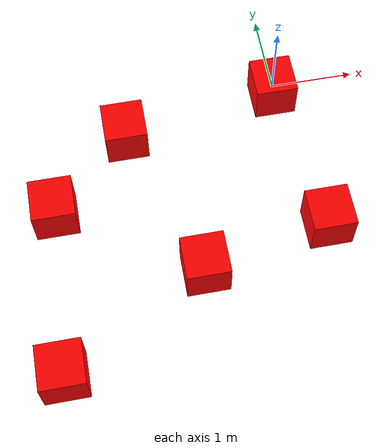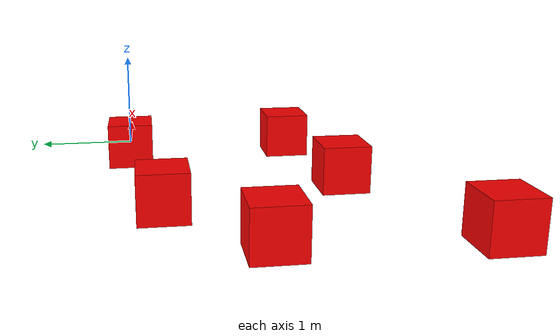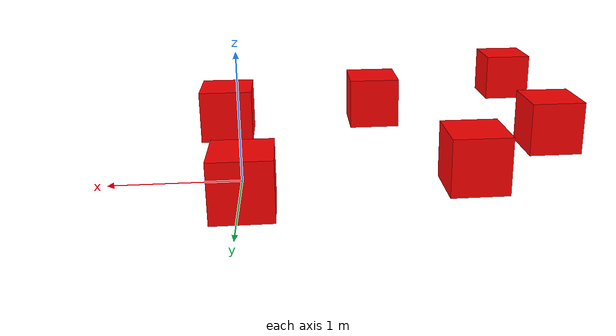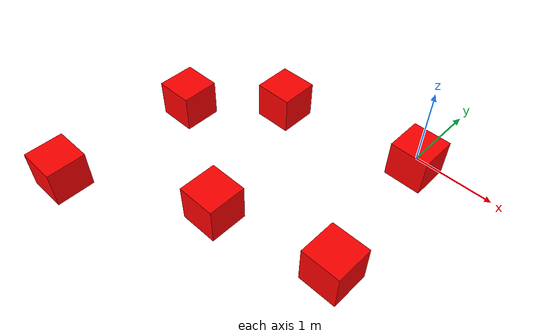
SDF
<?xml version='1.0'?>
<sdf version='1.7'>
  <model name='unit_box'>
    <link name='link'>
      <inertial>
        <mass>1</mass>
        <inertia>
          <ixx>0.166667</ixx>
          <ixy>0</ixy>
          <ixz>0</ixz>
          <iyy>0.166667</iyy>
          <iyz>0</iyz>
          <izz>0.166667</izz>
        </inertia>
        <pose>0 0 0 0 -0 0</pose>
      </inertial>
      <self_collide>0</self_collide>
      <enable_wind>0</enable_wind>
      <kinematic>0</kinematic>
      <pose>0 0 0 0 -0 0</pose>
      <gravity>1</gravity>
      <visual name='visual'>
        <geometry>
          <box>
            <size>0.5 0.5 0.5</size>
          </box>
        </geometry>
        <material>
          <script>
            <name>Gazebo/Grey</name>
            <uri>file://media/materials/scripts/gazebo.material</uri>
          </script>
          <shader type='pixel'>
            <normal_map>__default__</normal_map>
          </shader>
          <ambient>1 0 0 1</ambient>
          <diffuse>0.7 0.7 0.7 1</diffuse>
          <specular>0.01 0.01 0.01 1</specular>
          <emissive>0 0 0 1</emissive>
        </material>
        <pose>0 0 0 0 -0 0</pose>
        <transparency>0</transparency>
        <cast_shadows>1</cast_shadows>
      </visual>
      <collision name='collision'>
        <laser_retro>0</laser_retro>
        <max_contacts>10</max_contacts>
        <pose>0 0 0 0 -0 0</pose>
        <geometry>
          <box>
            <size>0.5 0.5 0.5</size>
          </box>
        </geometry>
        <surface>
          <friction>
            <ode>
              <mu>1</mu>
              <mu2>1</mu2>
              <fdir1>0 0 0</fdir1>
              <slip1>0</slip1>
              <slip2>0</slip2>
            </ode>
            <torsional>
              <coefficient>1</coefficient>
              <patch_radius>0</patch_radius>
              <surface_radius>0</surface_radius>
              <use_patch_radius>1</use_patch_radius>
              <ode>
                <slip>0</slip>
              </ode>
            </torsional>
          </friction>
          <bounce>
            <restitution_coefficient>0</restitution_coefficient>
            <threshold>1e+06</threshold>
          </bounce>
          <contact>
            <collide_without_contact>0</collide_without_contact>
            <collide_without_contact_bitmask>1</collide_without_contact_bitmask>
            <collide_bitmask>1</collide_bitmask>
            <ode>
              <soft_cfm>0</soft_cfm>
              <soft_erp>0.2</soft_erp>
              <kp>1e+13</kp>
              <kd>1</kd>
              <max_vel>0.01</max_vel>
              <min_depth>0</min_depth>
            </ode>
            <bullet>
              <split_impulse>1</split_impulse>
              <split_impulse_penetration_threshold>-0.01</split_impulse_penetration_threshold>
              <soft_cfm>0</soft_cfm>
              <soft_erp>0.2</soft_erp>
              <kp>1e+13</kp>
              <kd>1</kd>
            </bullet>
          </contact>
        </surface>
      </collision>
    </link>
    <link name='link_clone'>
      <inertial>
        <mass>1</mass>
        <inertia>
          <ixx>0.166667</ixx>
          <ixy>0</ixy>
          <ixz>0</ixz>
          <iyy>0.166667</iyy>
          <iyz>0</iyz>
          <izz>0.166667</izz>
        </inertia>
        <pose>0 0 0 0 -0 0</pose>
      </inertial>
      <self_collide>0</self_collide>
      <enable_wind>0</enable_wind>
      <kinematic>0</kinematic>
      <pose>0.24386 -1.88922 0 -0 -0 -0</pose>
      <gravity>1</gravity>
      <visual name='visual'>
        <geometry>
          <box>
            <size>0.5 0.5 0.5</size>
          </box>
        </geometry>
        <material>
          <script>
            <name>Gazebo/Grey</name>
            <uri>file://media/materials/scripts/gazebo.material</uri>
          </script>
          <shader type='pixel'>
            <normal_map>__default__</normal_map>
          </shader>
          <ambient>1 0 0 1</ambient>
          <diffuse>0.7 0.7 0.7 1</diffuse>
          <specular>0.01 0.01 0.01 1</specular>
          <emissive>0 0 0 1</emissive>
        </material>
        <pose>0 0 0 0 -0 0</pose>
        <transparency>0</transparency>
        <cast_shadows>1</cast_shadows>
      </visual>
      <collision name='collision'>
        <laser_retro>0</laser_retro>
        <max_contacts>10</max_contacts>
        <pose>0 0 0 0 -0 0</pose>
        <geometry>
          <box>
            <size>0.5 0.5 0.5</size>
          </box>
        </geometry>
        <surface>
          <friction>
            <ode>
              <mu>1</mu>
              <mu2>1</mu2>
              <fdir1>0 0 0</fdir1>
              <slip1>0</slip1>
              <slip2>0</slip2>
            </ode>
            <torsional>
              <coefficient>1</coefficient>
              <patch_radius>0</patch_radius>
              <surface_radius>0</surface_radius>
              <use_patch_radius>1</use_patch_radius>
              <ode>
                <slip>0</slip>
              </ode>
            </torsional>
          </friction>
          <bounce>
            <restitution_coefficient>0</restitution_coefficient>
            <threshold>1e+06</threshold>
          </bounce>
          <contact>
            <collide_without_contact>0</collide_without_contact>
            <collide_without_contact_bitmask>1</collide_without_contact_bitmask>
            <collide_bitmask>1</collide_bitmask>
            <ode>
              <soft_cfm>0</soft_cfm>
              <soft_erp>0.2</soft_erp>
              <kp>1e+13</kp>
              <kd>1</kd>
              <max_vel>0.01</max_vel>
              <min_depth>0</min_depth>
            </ode>
            <bullet>
              <split_impulse>1</split_impulse>
              <split_impulse_penetration_threshold>-0.01</split_impulse_penetration_threshold>
              <soft_cfm>0</soft_cfm>
              <soft_erp>0.2</soft_erp>
              <kp>1e+13</kp>
              <kd>1</kd>
            </bullet>
          </contact>
        </surface>
      </collision>
    </link>
    <link name='link_clone_0'>
      <inertial>
        <mass>1</mass>
        <inertia>
          <ixx>0.166667</ixx>
          <ixy>0</ixy>
          <ixz>0</ixz>
          <iyy>0.166667</iyy>
          <iyz>0</iyz>
          <izz>0.166667</izz>
        </inertia>
        <pose>0 0 0 0 -0 0</pose>
      </inertial>
      <self_collide>0</self_collide>
      <enable_wind>0</enable_wind>
      <kinematic>0</kinematic>
      <pose>-1.25347 -2.21177 0 -0 -0 -0</pose>
      <gravity>1</gravity>
      <visual name='visual'>
        <geometry>
          <box>
            <size>0.5 0.5 0.5</size>
          </box>
        </geometry>
        <material>
          <script>
            <name>Gazebo/Grey</name>
            <uri>file://media/materials/scripts/gazebo.material</uri>
          </script>
          <shader type='pixel'>
            <normal_map>__default__</normal_map>
          </shader>
          <ambient>1 0 0 1</ambient>
          <diffuse>0.7 0.7 0.7 1</diffuse>
          <specular>0.01 0.01 0.01 1</specular>
          <emissive>0 0 0 1</emissive>
        </material>
        <pose>0 0 0 0 -0 0</pose>
        <transparency>0</transparency>
        <cast_shadows>1</cast_shadows>
      </visual>
      <collision name='collision'>
        <laser_retro>0</laser_retro>
        <max_contacts>10</max_contacts>
        <pose>0 0 0 0 -0 0</pose>
        <geometry>
          <box>
            <size>0.5 0.5 0.5</size>
          </box>
        </geometry>
        <surface>
          <friction>
            <ode>
              <mu>1</mu>
              <mu2>1</mu2>
              <fdir1>0 0 0</fdir1>
              <slip1>0</slip1>
              <slip2>0</slip2>
            </ode>
            <torsional>
              <coefficient>1</coefficient>
              <patch_radius>0</patch_radius>
              <surface_radius>0</surface_radius>
              <use_patch_radius>1</use_patch_radius>
              <ode>
                <slip>0</slip>
              </ode>
            </torsional>
          </friction>
          <bounce>
            <restitution_coefficient>0</restitution_coefficient>
            <threshold>1e+06</threshold>
          </bounce>
          <contact>
            <collide_without_contact>0</collide_without_contact>
            <collide_without_contact_bitmask>1</collide_without_contact_bitmask>
            <collide_bitmask>1</collide_bitmask>
            <ode>
              <soft_cfm>0</soft_cfm>
              <soft_erp>0.2</soft_erp>
              <kp>1e+13</kp>
              <kd>1</kd>
              <max_vel>0.01</max_vel>
              <min_depth>0</min_depth>
            </ode>
            <bullet>
              <split_impulse>1</split_impulse>
              <split_impulse_penetration_threshold>-0.01</split_impulse_penetration_threshold>
              <soft_cfm>0</soft_cfm>
              <soft_erp>0.2</soft_erp>
              <kp>1e+13</kp>
              <kd>1</kd>
            </bullet>
          </contact>
        </surface>
      </collision>
    </link>
    <link name='link_clone_1'>
      <inertial>
        <mass>1</mass>
        <inertia>
          <ixx>0.166667</ixx>
          <ixy>0</ixy>
          <ixz>0</ixz>
          <iyy>0.166667</iyy>
          <iyz>0</iyz>
          <izz>0.166667</izz>
        </inertia>
        <pose>0 0 0 0 -0 0</pose>
      </inertial>
      <self_collide>0</self_collide>
      <enable_wind>0</enable_wind>
      <kinematic>0</kinematic>
      <pose>-2.84193 -1.20206 0 -0 -0 -0</pose>
      <gravity>1</gravity>
      <visual name='visual'>
        <geometry>
          <box>
            <size>0.5 0.5 0.5</size>
          </box>
        </geometry>
        <material>
          <script>
            <name>Gazebo/Grey</name>
            <uri>file://media/materials/scripts/gazebo.material</uri>
          </script>
          <shader type='pixel'>
            <normal_map>__default__</normal_map>
          </shader>
          <ambient>1 0 0 1</ambient>
          <diffuse>0.7 0.7 0.7 1</diffuse>
          <specular>0.01 0.01 0.01 1</specular>
          <emissive>0 0 0 1</emissive>
        </material>
        <pose>0 0 0 0 -0 0</pose>
        <transparency>0</transparency>
        <cast_shadows>1</cast_shadows>
      </visual>
      <collision name='collision'>
        <laser_retro>0</laser_retro>
        <max_contacts>10</max_contacts>
        <pose>0 0 0 0 -0 0</pose>
        <geometry>
          <box>
            <size>0.5 0.5 0.5</size>
          </box>
        </geometry>
        <surface>
          <friction>
            <ode>
              <mu>1</mu>
              <mu2>1</mu2>
              <fdir1>0 0 0</fdir1>
              <slip1>0</slip1>
              <slip2>0</slip2>
            </ode>
            <torsional>
              <coefficient>1</coefficient>
              <patch_radius>0</patch_radius>
              <surface_radius>0</surface_radius>
              <use_patch_radius>1</use_patch_radius>
              <ode>
                <slip>0</slip>
              </ode>
            </torsional>
          </friction>
          <bounce>
            <restitution_coefficient>0</restitution_coefficient>
            <threshold>1e+06</threshold>
          </bounce>
          <contact>
            <collide_without_contact>0</collide_without_contact>
            <collide_without_contact_bitmask>1</collide_without_contact_bitmask>
            <collide_bitmask>1</collide_bitmask>
            <ode>
              <soft_cfm>0</soft_cfm>
              <soft_erp>0.2</soft_erp>
              <kp>1e+13</kp>
              <kd>1</kd>
              <max_vel>0.01</max_vel>
              <min_depth>0</min_depth>
            </ode>
            <bullet>
              <split_impulse>1</split_impulse>
              <split_impulse_penetration_threshold>-0.01</split_impulse_penetration_threshold>
              <soft_cfm>0</soft_cfm>
              <soft_erp>0.2</soft_erp>
              <kp>1e+13</kp>
              <kd>1</kd>
            </bullet>
          </contact>
        </surface>
      </collision>
    </link>
    <link name='link_clone_2'>
      <inertial>
        <mass>1</mass>
        <inertia>
          <ixx>0.166667</ixx>
          <ixy>0</ixy>
          <ixz>0</ixz>
          <iyy>0.166667</iyy>
          <iyz>0</iyz>
          <izz>0.166667</izz>
        </inertia>
        <pose>0 0 0 0 -0 0</pose>
      </inertial>
      <self_collide>0</self_collide>
      <enable_wind>0</enable_wind>
      <kinematic>0</kinematic>
      <pose>-1.89069 -0.317917 -0 -0 -0 -0</pose>
      <gravity>1</gravity>
      <visual name='visual'>
        <geometry>
          <box>
            <size>0.5 0.5 0.5</size>
          </box>
        </geometry>
        <material>
          <script>
            <name>Gazebo/Grey</name>
            <uri>file://media/materials/scripts/gazebo.material</uri>
          </script>
          <shader type='pixel'>
            <normal_map>__default__</normal_map>
          </shader>
          <ambient>1 0 0 1</ambient>
          <diffuse>0.7 0.7 0.7 1</diffuse>
          <specular>0.01 0.01 0.01 1</specular>
          <emissive>0 0 0 1</emissive>
        </material>
        <pose>0 0 0 0 -0 0</pose>
        <transparency>0</transparency>
        <cast_shadows>1</cast_shadows>
      </visual>
      <collision name='collision'>
        <laser_retro>0</laser_retro>
        <max_contacts>10</max_contacts>
        <pose>0 0 0 0 -0 0</pose>
        <geometry>
          <box>
            <size>0.5 0.5 0.5</size>
          </box>
        </geometry>
        <surface>
          <friction>
            <ode>
              <mu>1</mu>
              <mu2>1</mu2>
              <fdir1>0 0 0</fdir1>
              <slip1>0</slip1>
              <slip2>0</slip2>
            </ode>
            <torsional>
              <coefficient>1</coefficient>
              <patch_radius>0</patch_radius>
              <surface_radius>0</surface_radius>
              <use_patch_radius>1</use_patch_radius>
              <ode>
                <slip>0</slip>
              </ode>
            </torsional>
          </friction>
          <bounce>
            <restitution_coefficient>0</restitution_coefficient>
            <threshold>1e+06</threshold>
          </bounce>
          <contact>
            <collide_without_contact>0</collide_without_contact>
            <collide_without_contact_bitmask>1</collide_without_contact_bitmask>
            <collide_bitmask>1</collide_bitmask>
            <ode>
              <soft_cfm>0</soft_cfm>
              <soft_erp>0.2</soft_erp>
              <kp>1e+13</kp>
              <kd>1</kd>
              <max_vel>0.01</max_vel>
              <min_depth>0</min_depth>
            </ode>
            <bullet>
              <split_impulse>1</split_impulse>
              <split_impulse_penetration_threshold>-0.01</split_impulse_penetration_threshold>
              <soft_cfm>0</soft_cfm>
              <soft_erp>0.2</soft_erp>
              <kp>1e+13</kp>
              <kd>1</kd>
            </bullet>
          </contact>
        </surface>
      </collision>
    </link>
    <link name='link_clone_3'>
      <inertial>
        <mass>1</mass>
        <inertia>
          <ixx>0.166667</ixx>
          <ixy>0</ixy>
          <ixz>0</ixz>
          <iyy>0.166667</iyy>
          <iyz>0</iyz>
          <izz>0.166667</izz>
        </inertia>
        <pose>0 0 0 0 -0 0</pose>
      </inertial>
      <self_collide>0</self_collide>
      <enable_wind>0</enable_wind>
      <kinematic>0</kinematic>
      <pose>-2.95242 -3.1502 0 -0 -0 -0</pose>
      <gravity>1</gravity>
      <visual name='visual'>
        <geometry>
          <box>
            <size>0.5 0.5 0.5</size>
          </box>
        </geometry>
        <material>
          <script>
            <name>Gazebo/Grey</name>
            <uri>file://media/materials/scripts/gazebo.material</uri>
          </script>
          <shader type='pixel'>
            <normal_map>__default__</normal_map>
          </shader>
          <ambient>1 0 0 1</ambient>
          <diffuse>0.7 0.7 0.7 1</diffuse>
          <specular>0.01 0.01 0.01 1</specular>
          <emissive>0 0 0 1</emissive>
        </material>
        <pose>0 0 0 0 -0 0</pose>
        <transparency>0</transparency>
        <cast_shadows>1</cast_shadows>
      </visual>
      <collision name='collision'>
        <laser_retro>0</laser_retro>
        <max_contacts>10</max_contacts>
        <pose>0 0 0 0 -0 0</pose>
        <geometry>
          <box>
            <size>0.5 0.5 0.5</size>
          </box>
        </geometry>
        <surface>
          <friction>
            <ode>
              <mu>1</mu>
              <mu2>1</mu2>
              <fdir1>0 0 0</fdir1>
              <slip1>0</slip1>
              <slip2>0</slip2>
            </ode>
            <torsional>
              <coefficient>1</coefficient>
              <patch_radius>0</patch_radius>
              <surface_radius>0</surface_radius>
              <use_patch_radius>1</use_patch_radius>
              <ode>
                <slip>0</slip>
              </ode>
            </torsional>
          </friction>
          <bounce>
            <restitution_coefficient>0</restitution_coefficient>
            <threshold>1e+06</threshold>
          </bounce>
          <contact>
            <collide_without_contact>0</collide_without_contact>
            <collide_without_contact_bitmask>1</collide_without_contact_bitmask>
            <collide_bitmask>1</collide_bitmask>
            <ode>
              <soft_cfm>0</soft_cfm>
              <soft_erp>0.2</soft_erp>
              <kp>1e+13</kp>
              <kd>1</kd>
              <max_vel>0.01</max_vel>
              <min_depth>0</min_depth>
            </ode>
            <bullet>
              <split_impulse>1</split_impulse>
              <split_impulse_penetration_threshold>-0.01</split_impulse_penetration_threshold>
              <soft_cfm>0</soft_cfm>
              <soft_erp>0.2</soft_erp>
              <kp>1e+13</kp>
              <kd>1</kd>
            </bullet>
          </contact>
        </surface>
      </collision>
    </link>
    <static>0</static>
    <allow_auto_disable>1</allow_auto_disable>
  </model>
</sdf>
